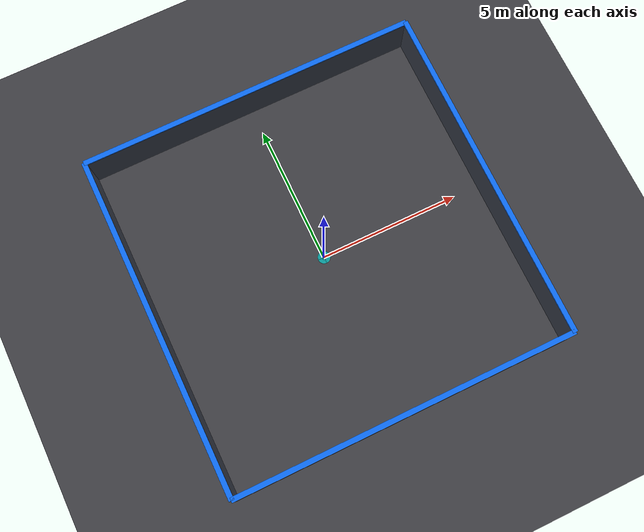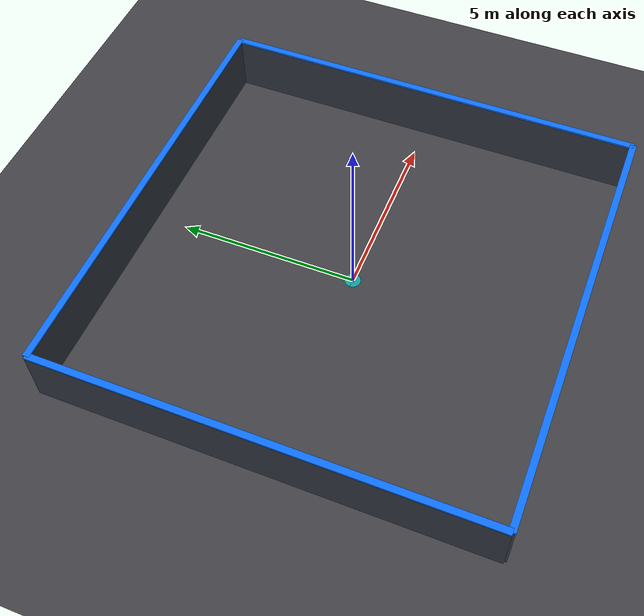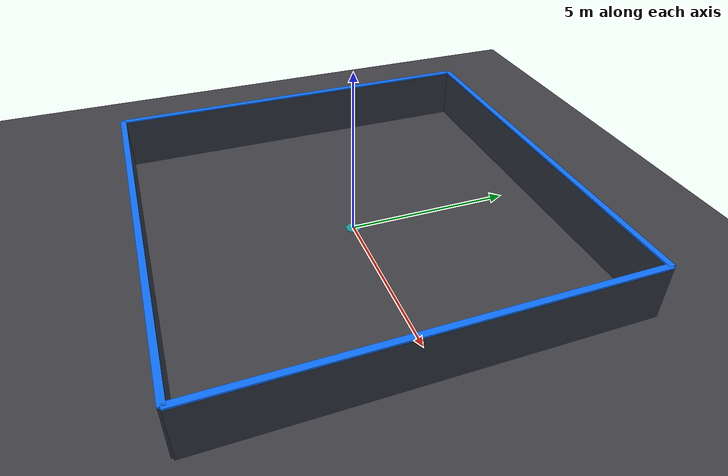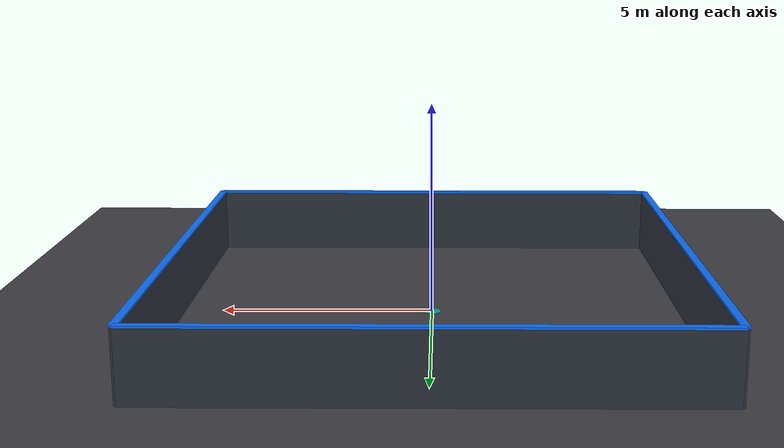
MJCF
<mujoco model="cf2x_pro">

  <!-- ═══════════════════════════════════════════════════
       Visual & rendering settings
  ═══════════════════════════════════════════════════ -->
  <visual>
    <global offwidth="1920" offheight="1080" fovy="55"/>
    <quality shadowsize="4096" offsamples="8"/>
    <headlight
      diffuse="0.7 0.7 0.7"
      ambient="0.25 0.25 0.28"
      specular="0.15 0.15 0.15"
      active="1"/>
    <map shadowclip="0.05" shadowscale="0.5" znear="0.01"/>
    <rgba haze="0.18 0.22 0.28 1"/>
  </visual>

  <statistic center="0 0 0.8" extent="2.5"/>

  <!-- ═══════════════════════════════════════════════════
       Physics options
  ═══════════════════════════════════════════════════ -->
  <option
    timestep="0.002"
    gravity="0 0 -9.81"
    integrator="RK4"
    density="1.225"
    viscosity="1.8e-5"
    wind="0 0 0"/>

  <!-- ═══════════════════════════════════════════════════
       Assets
  ═══════════════════════════════════════════════════ -->
  <asset>
    <!-- Drone mesh -->
    <mesh name="cf2_mesh" file="cf2.stl" scale="1 1 1"/>

    <!-- Sky: deep blue-grey dusk gradient -->
    <texture
      name="skybox"
      type="skybox"
      builtin="gradient"
      rgb1="0.08 0.10 0.18"
      rgb2="0.35 0.45 0.62"
      width="512" height="512"/>

    <!-- Floor: dark polished concrete -->
    <texture
      name="concrete"
      type="2d"
      builtin="checker"
      rgb1="0.22 0.22 0.24"
      rgb2="0.30 0.30 0.32"
      width="1024" height="1024"/>
    <material
      name="concrete_mat"
      texture="concrete"
      texrepeat="8 8"
      reflectance="0.25"
      specular="0.4"
      shininess="0.15"/>

    <!-- Perimeter wall (dark brushed steel look) -->
    <texture
      name="wall_tex"
      type="2d"
      builtin="flat"
      rgb1="0.18 0.20 0.24"
      width="256" height="256"/>
    <material
      name="wall_mat"
      texture="wall_tex"
      reflectance="0.05"
      specular="0.2"
      shininess="0.05"/>

    <!-- Accent stripe on wall top edge -->
    <material
      name="accent_mat"
      rgba="0.06 0.45 1.00 1"
      specular="0.8"
      shininess="0.6"
      emission="0.25"/>

    <!-- Drone: matte charcoal with subtle specular -->
    <material
      name="drone_mat"
      rgba="0.15 0.15 0.17 1"
      specular="0.5"
      shininess="0.5"/>

    <!-- Motor housing: bright orange accent -->
    <material
      name="motor_mat"
      rgba="1.0 0.42 0.0 1"
      specular="0.6"
      shininess="0.4"/>

    <!-- Rotor disc: translucent blue-white -->
    <material
      name="rotor_disc_mat"
      rgba="0.55 0.78 1.0 0.35"
      specular="0.2"
      shininess="0.1"/>

    <!-- Target marker: glowing cyan ring -->
    <material
      name="target_mat"
      rgba="0.0 0.85 0.85 0.70"
      emission="0.5"
      specular="0.4"
      shininess="0.3"/>

    <!-- Grid lines overlay (subtle) -->
    <material
      name="grid_lines"
      rgba="0.40 0.40 0.50 0.25"
      emission="0.05"/>

  </asset>

  <!-- ═══════════════════════════════════════════════════
       World
  ═══════════════════════════════════════════════════ -->
  <worldbody>

    <!-- Directional key-light (top-left) -->
    <light
      name="key_light"
      directional="true"
      pos="2 -2 4"
      dir="-0.4 0.4 -1"
      diffuse="0.85 0.82 0.75"
      specular="0.3 0.3 0.3"
      castshadow="true"/>

    <!-- Soft fill from right -->
    <light
      name="fill_light"
      directional="true"
      pos="-3 3 2"
      dir="0.5 -0.5 -0.5"
      diffuse="0.25 0.28 0.38"
      specular="0.0 0.0 0.0"
      castshadow="false"/>

    <!-- Warm back-light rim -->
    <light
      name="rim_light"
      directional="false"
      pos="0 3 1.5"
      diffuse="0.30 0.22 0.10"
      specular="0.1 0.08 0.03"
      castshadow="false"/>

    <!-- ── Ground plane (large dark concrete) ─────────────────── -->
    <geom
      name="floor"
      type="plane"
      size="12 12 0.1"
      material="concrete_mat"
      condim="3"/>

    <!-- Subtle grid-line overlay via a very thin flat plane above floor -->
    <!-- (optional visual layer — keep contype/conaffinity=0 so no physics) -->

    <!-- ── Perimeter walls (arena feel) ───────────────────────── -->
    <!-- South wall -->
    <geom
      name="wall_s"
      type="box"
      size="6.02 0.08 0.80"
      pos="0 -6 0.80"
      material="wall_mat"
      condim="1"/>
    <!-- North wall -->
    <geom
      name="wall_n"
      type="box"
      size="6.02 0.08 0.80"
      pos="0  6 0.80"
      material="wall_mat"
      condim="1"/>
    <!-- West wall -->
    <geom
      name="wall_w"
      type="box"
      size="0.08 6.02 0.80"
      pos="-6 0 0.80"
      material="wall_mat"
      condim="1"/>
    <!-- East wall -->
    <geom
      name="wall_e"
      type="box"
      size="0.08 6.02 0.80"
      pos=" 6 0 0.80"
      material="wall_mat"
      condim="1"/>

    <!-- Blue accent strip on top of each wall -->
    <geom name="acc_s" type="box" size="6.02 0.09 0.025" pos="0 -6 1.625" material="accent_mat" contype="0" conaffinity="0"/>
    <geom name="acc_n" type="box" size="6.02 0.09 0.025" pos="0  6 1.625" material="accent_mat" contype="0" conaffinity="0"/>
    <geom name="acc_w" type="box" size="0.09 6.02 0.025" pos="-6 0 1.625" material="accent_mat" contype="0" conaffinity="0"/>
    <geom name="acc_e" type="box" size="0.09 6.02 0.025" pos=" 6 0 1.625" material="accent_mat" contype="0" conaffinity="0"/>

    <!-- ── Hover target marker (glowing ring on floor) ─────────── -->
    <!-- Outer ring -->
    <geom
      name="target_ring_outer"
      type="cylinder"
      size="0.22 0.004"
      pos="0.0 0.0 0.002"
      material="target_mat"
      contype="0" conaffinity="0"/>
    <!-- Inner ring -->
    <geom
      name="target_ring_inner"
      type="cylinder"
      size="0.08 0.004"
      pos="0.0 0.0 0.002"
      material="target_mat"
      contype="0" conaffinity="0"/>
    <!-- Crosshair lines -->
    <geom name="cross_ns" type="box" size="0.005 0.22 0.003" pos="0 0 0.003" material="target_mat" contype="0" conaffinity="0"/>
    <geom name="cross_ew" type="box" size="0.22 0.005 0.003" pos="0 0 0.003" material="target_mat" contype="0" conaffinity="0"/>

    <!-- ── Drone body ──────────────────────────────────────────── -->
    <body name="cf2x" pos="0 0 0.1">
      <freejoint name="root"/>

      <!-- Tracking camera — slightly higher and further back for drama -->
      <camera
        name="track_cam"
        mode="trackcom"
        pos="0 -1.0 0.55"
        xyaxes="1 0 0 0 0.45 1"/>

      <!-- Fixed overview camera -->
      <camera
        name="overview_cam"
        mode="fixed"
        pos="2.2 -2.2 2.5"
        xyaxes="-0.707 0.707 0 -0.354 -0.354 0.866"/>

      <inertial
        pos="0 0 0"
        mass="0.027"
        diaginertia="1.4e-5 1.4e-5 2.17e-5"/>

      <!-- Main body (dark) -->
      <geom
        name="visual"
        type="mesh"
        mesh="cf2_mesh"
        material="drone_mat"
        contype="0" conaffinity="0"/>

      <!-- Collision cylinder (invisible) -->
      <geom
        name="collision"
        type="cylinder"
        size="0.06 0.0125"
        contype="1" conaffinity="1"
        rgba="0 0 0 0"/>

      <!-- Motor housings (orange spheres at arm tips) -->
      <geom name="motor0" type="sphere" size="0.008" pos=" 0.028 -0.028 0.004" material="motor_mat" contype="0" conaffinity="0"/>
      <geom name="motor1" type="sphere" size="0.008" pos="-0.028 -0.028 0.004" material="motor_mat" contype="0" conaffinity="0"/>
      <geom name="motor2" type="sphere" size="0.008" pos="-0.028  0.028 0.004" material="motor_mat" contype="0" conaffinity="0"/>
      <geom name="motor3" type="sphere" size="0.008" pos=" 0.028  0.028 0.004" material="motor_mat" contype="0" conaffinity="0"/>

      <!-- Rotor discs (translucent) -->
      <geom name="disc0" type="cylinder" size="0.023 0.001" pos=" 0.028 -0.028 0.006" material="rotor_disc_mat" contype="0" conaffinity="0"/>
      <geom name="disc1" type="cylinder" size="0.023 0.001" pos="-0.028 -0.028 0.006" material="rotor_disc_mat" contype="0" conaffinity="0"/>
      <geom name="disc2" type="cylinder" size="0.023 0.001" pos="-0.028  0.028 0.006" material="rotor_disc_mat" contype="0" conaffinity="0"/>
      <geom name="disc3" type="cylinder" size="0.023 0.001" pos=" 0.028  0.028 0.006" material="rotor_disc_mat" contype="0" conaffinity="0"/>

      <!-- Actuator sites -->
      <site name="rotor0" pos=" 0.028 -0.028 0" size="0.001"/>
      <site name="rotor1" pos="-0.028 -0.028 0" size="0.001"/>
      <site name="rotor2" pos="-0.028  0.028 0" size="0.001"/>
      <site name="rotor3" pos=" 0.028  0.028 0" size="0.001"/>

    </body>

  </worldbody>

  <!-- ═══════════════════════════════════════════════════
       Actuators (identical to basic_quadrotor.xml)
  ═══════════════════════════════════════════════════ -->
  <actuator>
    <general name="rotor0" site="rotor0" gear="0 0 1 0 0 -0.02513"/>
    <general name="rotor1" site="rotor1" gear="0 0 1 0 0  0.02513"/>
    <general name="rotor2" site="rotor2" gear="0 0 1 0 0 -0.02513"/>
    <general name="rotor3" site="rotor3" gear="0 0 1 0 0  0.02513"/>
  </actuator>

</mujoco>
